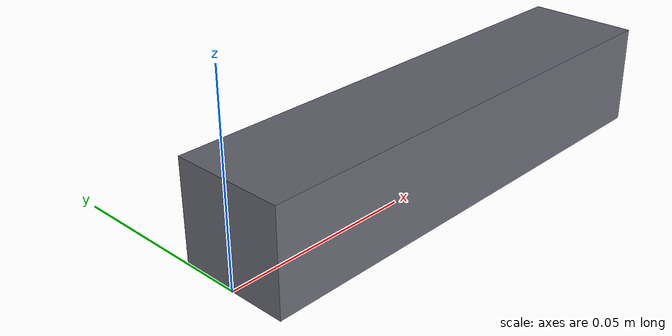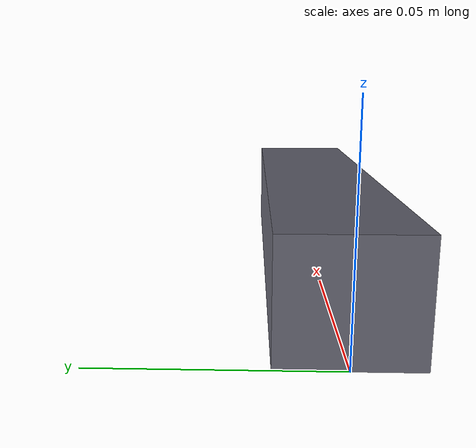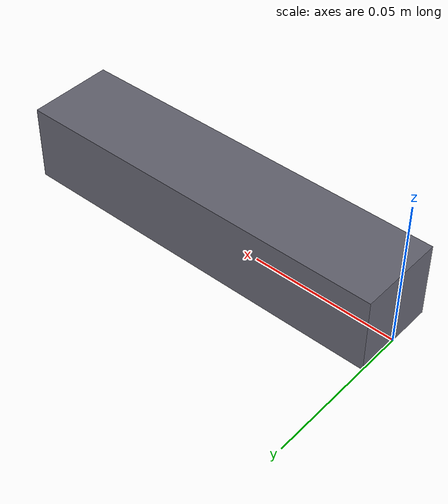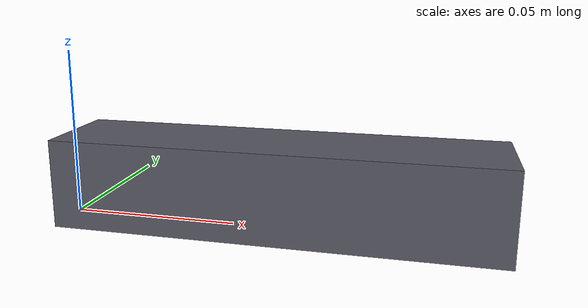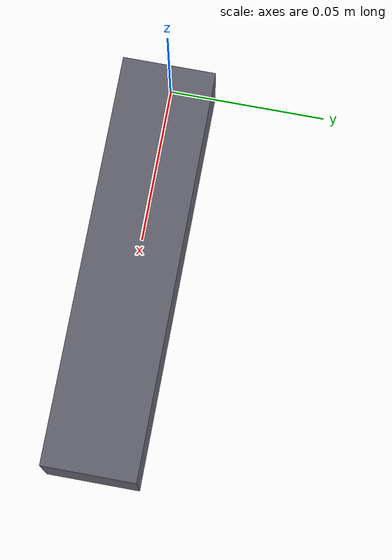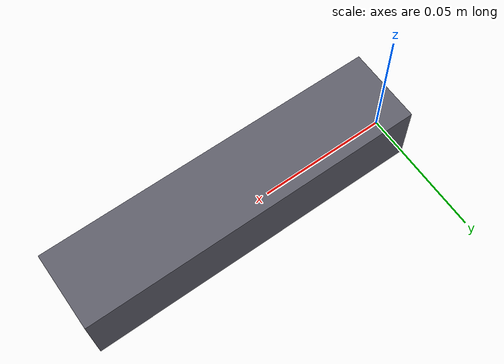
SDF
<?xml version="1.0" encoding="UTF-8"?>
<sdf version='1.9'>
  <model name='RealSenseD455'>
    <pose>0 0 0 0 0 0</pose>
    <self_collide>false</self_collide>
    <static>false</static>
    <link name='RealSenseD455/base_link'>
      <pose>0 0 0 0 0 0</pose>
      <inertial>
        <pose>0.064 0 0.013 0 0 0</pose>
        <mass>0.09</mass>
        <inertia>
          <ixx>1.13775e-05</ixx>
          <ixy>0</ixy>
          <ixz>0</ixz>
          <iyy>0.00012795</iyy>
          <iyz>0</iyz>
          <izz>0.0001291875</izz>
        </inertia>
      </inertial>
      <visual name='RealSenseD455/visual'>
        <pose>0.064 0 0.013 0 0 0</pose>
        <geometry>
          <box>
            <size>0.128 0.029 0.026</size>
          </box>
        </geometry>
        <material>
          <ambient>0.4 0.4 0.45 1</ambient>
          <diffuse>0.4 0.4 0.45 1</diffuse>
          <specular>0.1 0.1 0.1 1</specular>
        </material>
      </visual>
      <collision name='RealSenseD455/collision'>
        <pose>0.064 0 0.013 0 0 0</pose>
        <geometry>
          <box>
            <size>0.128 0.029 0.026</size>
          </box>
        </geometry>
      </collision>
      <sensor name='RealSenseD455/rgbd' type='rgbd_camera'>
        <pose>0.1 0 0.013 0 0 0</pose>
        <always_on>1</always_on>
        <update_rate>30</update_rate>
        <visualize>true</visualize>
        <topic>realsense/rgbd</topic>
        <camera>
          <horizontal_fov>1.0472</horizontal_fov>
          <image>
            <width>1280</width>
            <height>720</height>
            <format>R8G8B8</format>
          </image>

          <lens>
            <type>gnomonical</type>
            <scale_to_hfov>true</scale_to_hfov>

            <intrinsics>
              <fx>1108.5</fx>
              <fy>1108.5</fy>
              <cx>640.0</cx>
              <cy>360.0</cy>
              <s>0.0</s>
            </intrinsics>

            <projection>
              <p_fx>1108.5</p_fx>
              <p_fy>1108.5</p_fy>
              <p_cx>640.0</p_cx>
              <p_cy>360.0</p_cy>
              <tx>0.0</tx>
              <ty>0.0</ty>
            </projection>
          </lens>

          <clip>
            <near>0.1</near>
            <far>30</far>
          </clip>
        </camera>
        <depth_camera>
          <image>
            <width>1280</width>
            <height>720</height>
            <format>R_FLOAT32</format>
          </image>
          <clip>
            <near>0.1</near>
            <far>20</far>
          </clip>
        </depth_camera>
      </sensor>
      <gravity>true</gravity>
      <velocity_decay/>
    </link>
  </model>
</sdf>
